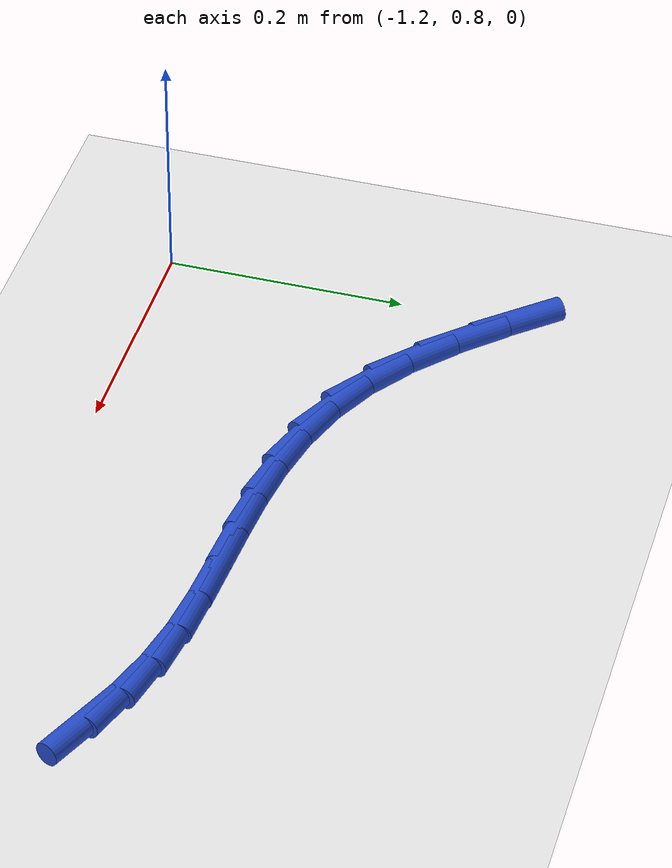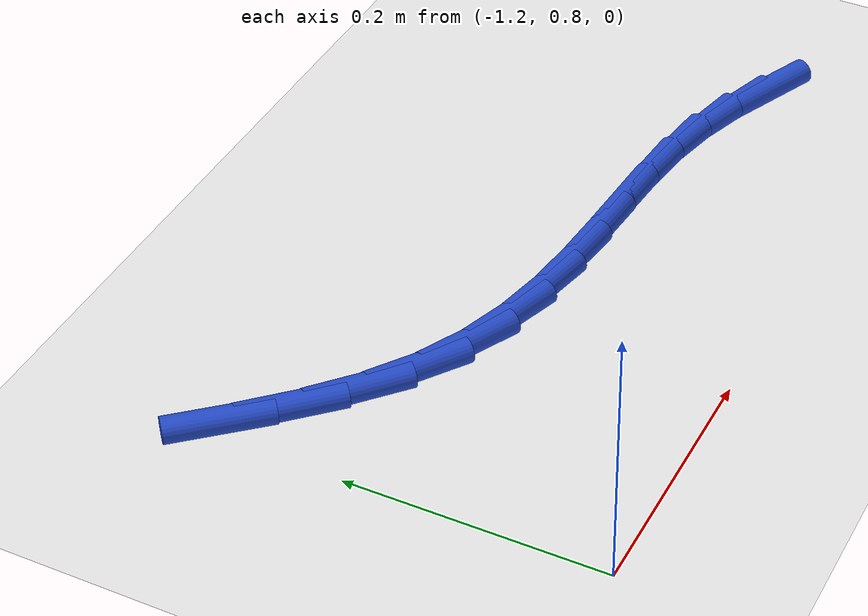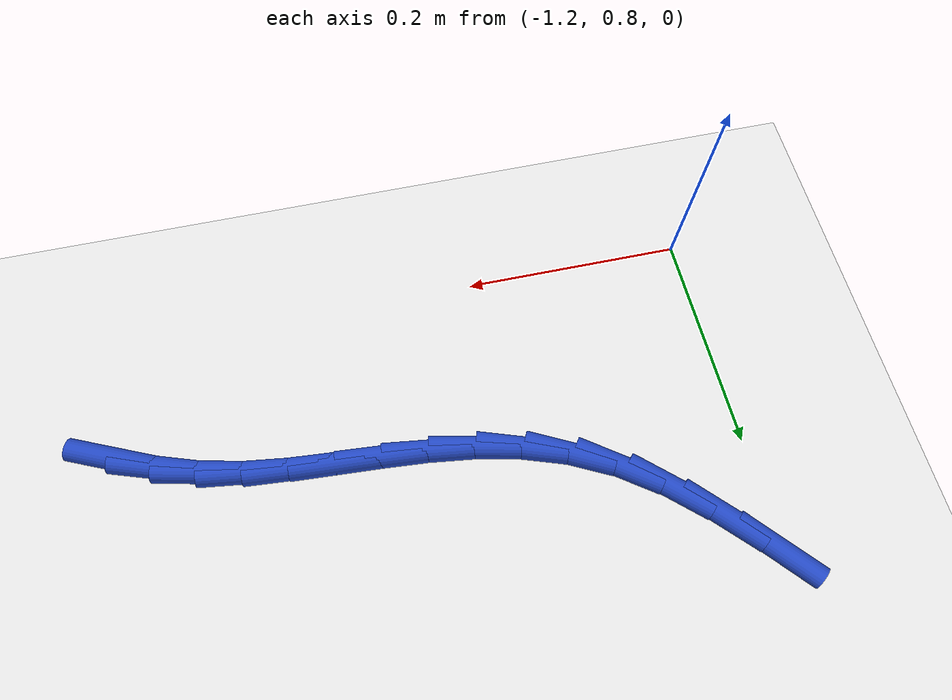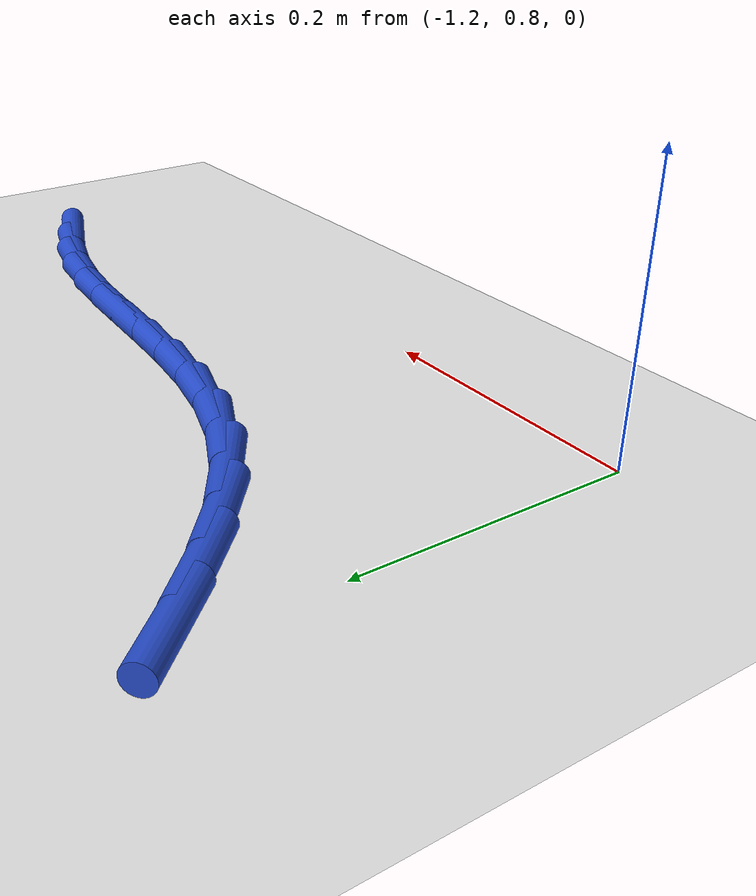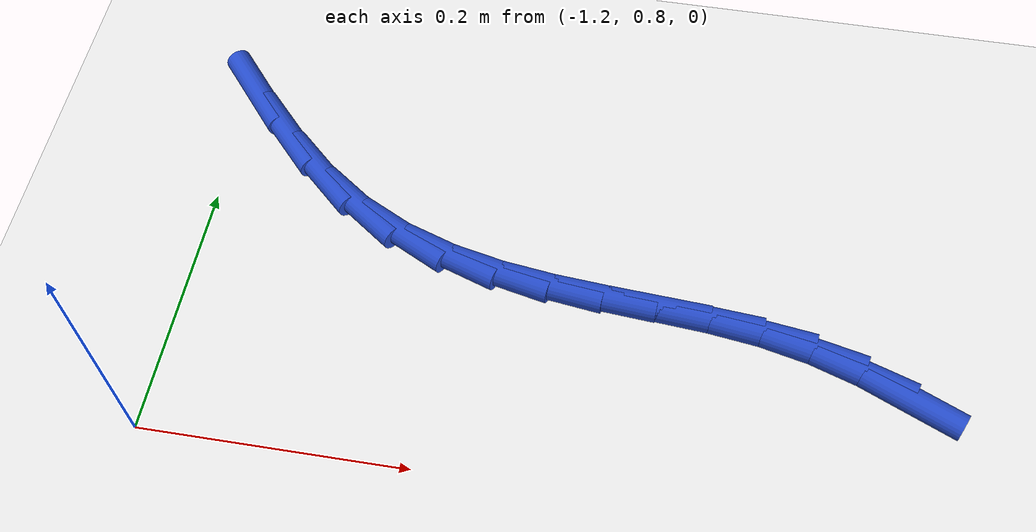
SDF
<sdf version="1.6">
 <world name="default">
  <model name="ground_plane">
   <static>1</static>
   <link name="link">
    <collision name="collision">
     <geometry><plane><normal>0 0 1</normal><size>100 100</size></plane></geometry>
     <surface><friction><ode><mu>100</mu><mu2>50</mu2></ode></friction></surface>
    </collision>
    <visual name="visual">
     <cast_shadows>0</cast_shadows>
     <geometry><plane><normal>0 0 1</normal><size>100 100</size></plane></geometry>
     <material>
      <script><uri>file://media/materials/scripts/gazebo.material</uri><name>Gazebo/WhiteGlow</name></script>
     </material>
    </visual>
   </link>
  </model>
  <model name="line">
   <link name="link_29">
    <pose>-0.6589687124317164 0.905663748652849 0.01 0 1.57 -0.4147409092447706</pose>
    <collision name="collision">
     <geometry><cylinder><radius>0.01</radius><length>0.08</length></cylinder></geometry>
    </collision>
    <visual name="visual">
     <material>
      <script><name>Gazebo/Blue</name><uri>file://media/materials/scripts/gazebo.material</uri></script>
     </material>
     <geometry><cylinder><radius>0.01</radius><length>0.08</length></cylinder></geometry>
    </visual>
   </link>
   <link name="link_30">
    <pose>-0.6944904219453207 0.9213032246291789 0.01 0 1.57 -0.3234879603843398</pose>
    <collision name="collision">
     <geometry><cylinder><radius>0.01</radius><length>0.08</length></cylinder></geometry>
    </collision>
    <visual name="visual">
     <material>
      <script><name>Gazebo/Blue</name><uri>file://media/materials/scripts/gazebo.material</uri></script>
     </material>
     <geometry><cylinder><radius>0.01</radius><length>0.08</length></cylinder></geometry>
    </visual>
   </link>
   <link name="link_31">
    <pose>-0.7309878591222044 0.9335395344376037 0.01 0 1.57 -0.2210676943774228</pose>
    <collision name="collision">
     <geometry><cylinder><radius>0.01</radius><length>0.08</length></cylinder></geometry>
    </collision>
    <visual name="visual">
     <material>
      <script><name>Gazebo/Blue</name><uri>file://media/materials/scripts/gazebo.material</uri></script>
     </material>
     <geometry><cylinder><radius>0.01</radius><length>0.08</length></cylinder></geometry>
    </visual>
   </link>
   <link name="link_32">
    <pose>-0.7685750742174922 0.9419869142806971 0.01 0 1.57 -0.13162935804286813</pose>
    <collision name="collision">
     <geometry><cylinder><radius>0.01</radius><length>0.08</length></cylinder></geometry>
    </collision>
    <visual name="visual">
     <material>
      <script><name>Gazebo/Blue</name><uri>file://media/materials/scripts/gazebo.material</uri></script>
     </material>
     <geometry><cylinder><radius>0.01</radius><length>0.08</length></cylinder></geometry>
    </visual>
   </link>
   <link name="link_33">
    <pose>-0.8071861993922907 0.9470988295646305 0.01 0 1.57 -0.07842216635753575</pose>
    <collision name="collision">
     <geometry><cylinder><radius>0.01</radius><length>0.08</length></cylinder></geometry>
    </collision>
    <visual name="visual">
     <material>
      <script><name>Gazebo/Blue</name><uri>file://media/materials/scripts/gazebo.material</uri></script>
     </material>
     <geometry><cylinder><radius>0.01</radius><length>0.08</length></cylinder></geometry>
    </visual>
   </link>
   <link name="link_34">
    <pose>-0.8465699263620361 0.9501937339469584 0.01 0 1.57 -0.060983118279326766</pose>
    <collision name="collision">
     <geometry><cylinder><radius>0.01</radius><length>0.08</length></cylinder></geometry>
    </collision>
    <visual name="visual">
     <material>
      <script><name>Gazebo/Blue</name><uri>file://media/materials/scripts/gazebo.material</uri></script>
     </material>
     <geometry><cylinder><radius>0.01</radius><length>0.08</length></cylinder></geometry>
    </visual>
   </link>
   <link name="link_35">
    <pose>-0.8864664385147346 0.9526297682378362 0.01 0 1.57 -0.07793263973695852</pose>
    <collision name="collision">
     <geometry><cylinder><radius>0.01</radius><length>0.08</length></cylinder></geometry>
    </collision>
    <visual name="visual">
     <material>
      <script><name>Gazebo/Blue</name><uri>file://media/materials/scripts/gazebo.material</uri></script>
     </material>
     <geometry><cylinder><radius>0.01</radius><length>0.08</length></cylinder></geometry>
    </visual>
   </link>
   <link name="link_36">
    <pose>-0.9266159192383923 0.9557650732474188 0.01 0 1.57 -0.12864229530129664</pose>
    <collision name="collision">
     <geometry><cylinder><radius>0.01</radius><length>0.08</length></cylinder></geometry>
    </collision>
    <visual name="visual">
     <material>
      <script><name>Gazebo/Blue</name><uri>file://media/materials/scripts/gazebo.material</uri></script>
     </material>
     <geometry><cylinder><radius>0.01</radius><length>0.08</length></cylinder></geometry>
    </visual>
   </link>
   <link name="link_37">
    <pose>-0.966758551921015 0.9609577897858612 0.01 0 1.57 -0.21261341061862662</pose>
    <collision name="collision">
     <geometry><cylinder><radius>0.01</radius><length>0.08</length></cylinder></geometry>
    </collision>
    <visual name="visual">
     <material>
      <script><name>Gazebo/Blue</name><uri>file://media/materials/scripts/gazebo.material</uri></script>
     </material>
     <geometry><cylinder><radius>0.01</radius><length>0.08</length></cylinder></geometry>
    </visual>
   </link>
   <link name="link_38">
    <pose>-1.006634519950609 0.9695660586633188 0.01 0 1.57 -0.3278099549088953</pose>
    <collision name="collision">
     <geometry><cylinder><radius>0.01</radius><length>0.08</length></cylinder></geometry>
    </collision>
    <visual name="visual">
     <material>
      <script><name>Gazebo/Blue</name><uri>file://media/materials/scripts/gazebo.material</uri></script>
     </material>
     <geometry><cylinder><radius>0.01</radius><length>0.08</length></cylinder></geometry>
    </visual>
   </link>
   <link name="link_39">
    <pose>-1.0459840067151804 0.9829480206899466 0.01 0 1.57 -0.4684530588624157</pose>
    <collision name="collision">
     <geometry><cylinder><radius>0.01</radius><length>0.08</length></cylinder></geometry>
    </collision>
    <visual name="visual">
     <material>
      <script><name>Gazebo/Blue</name><uri>file://media/materials/scripts/gazebo.material</uri></script>
     </material>
     <geometry><cylinder><radius>0.01</radius><length>0.08</length></cylinder></geometry>
    </visual>
   </link>
   <link name="link_40">
    <pose>-1.0845471956027357 1.0024618166758996 0.01 0 1.57 -0.6207220399254244</pose>
    <collision name="collision">
     <geometry><cylinder><radius>0.01</radius><length>0.08</length></cylinder></geometry>
    </collision>
    <visual name="visual">
     <material>
      <script><name>Gazebo/Blue</name><uri>file://media/materials/scripts/gazebo.material</uri></script>
     </material>
     <geometry><cylinder><radius>0.01</radius><length>0.08</length></cylinder></geometry>
    </visual>
   </link>
   <link name="link_41">
    <pose>-1.122070296859322 1.0292908193727501 0.01 0 1.57 -0.7404278517348016</pose>
    <collision name="collision">
     <geometry><cylinder><radius>0.01</radius><length>0.08</length></cylinder></geometry>
    </collision>
    <visual name="visual">
     <material>
      <script><name>Gazebo/Blue</name><uri>file://media/materials/scripts/gazebo.material</uri></script>
     </material>
     <geometry><cylinder><radius>0.01</radius><length>0.08</length></cylinder></geometry>
    </visual>
   </link>
   <link name="link_42">
    <pose>-1.158373692164482 1.0624675631776197 0.01 0 1.57 -0.8153161581939347</pose>
    <collision name="collision">
     <geometry><cylinder><radius>0.01</radius><length>0.08</length></cylinder></geometry>
    </collision>
    <visual name="visual">
     <material>
      <script><name>Gazebo/Blue</name><uri>file://media/materials/scripts/gazebo.material</uri></script>
     </material>
     <geometry><cylinder><radius>0.01</radius><length>0.08</length></cylinder></geometry>
    </visual>
   </link>
   <link name="link_43">
    <pose>-1.1933276420944352 1.0995781840697993 0.01 0 1.57 -0.8564229438490615</pose>
    <collision name="collision">
     <geometry><cylinder><radius>0.01</radius><length>0.08</length></cylinder></geometry>
    </collision>
    <visual name="visual">
     <material>
      <script><name>Gazebo/Blue</name><uri>file://media/materials/scripts/gazebo.material</uri></script>
     </material>
     <geometry><cylinder><radius>0.01</radius><length>0.08</length></cylinder></geometry>
    </visual>
   </link>
  </model>
 </world>
</sdf>
